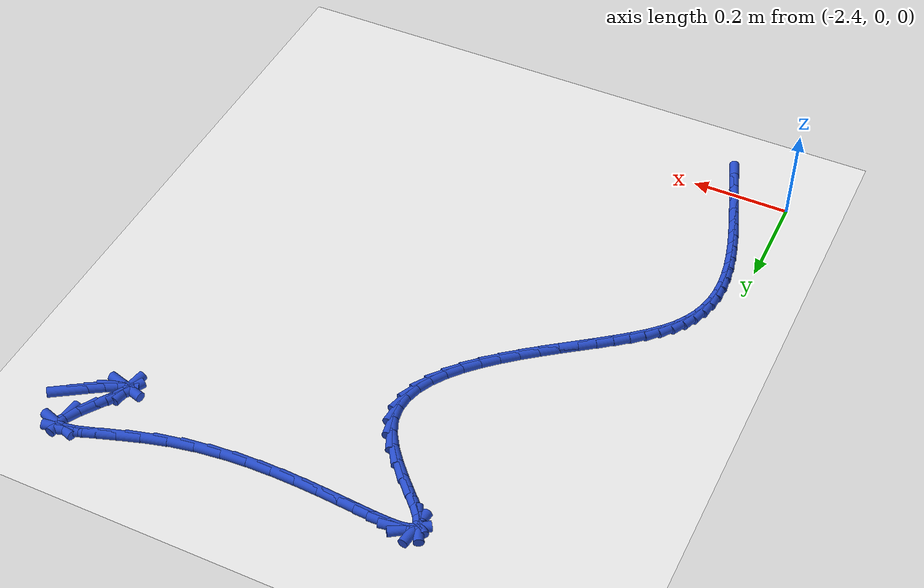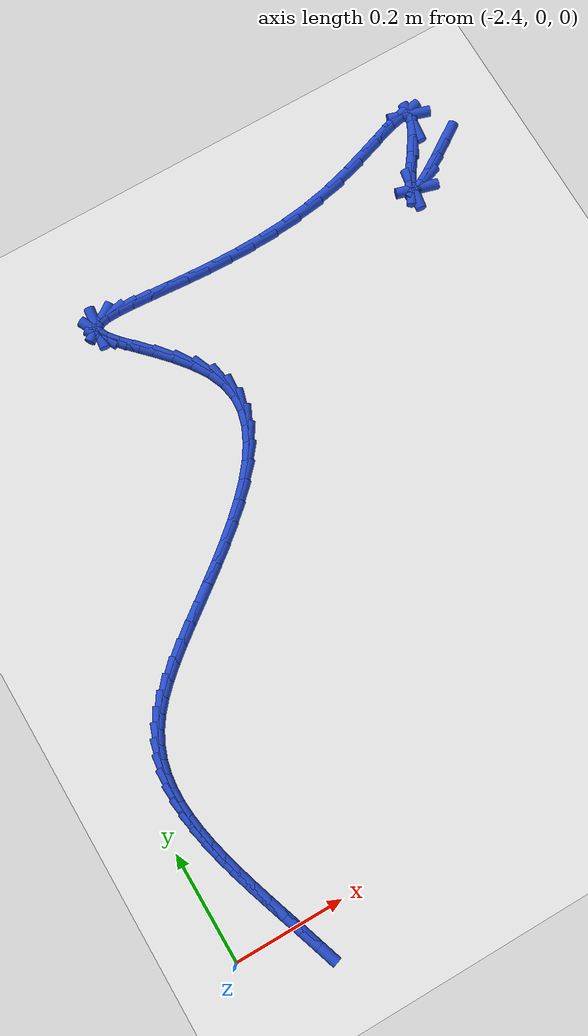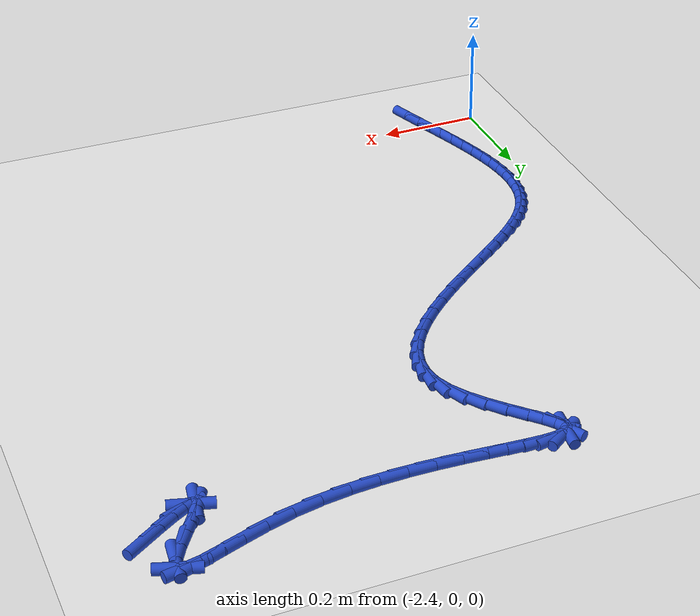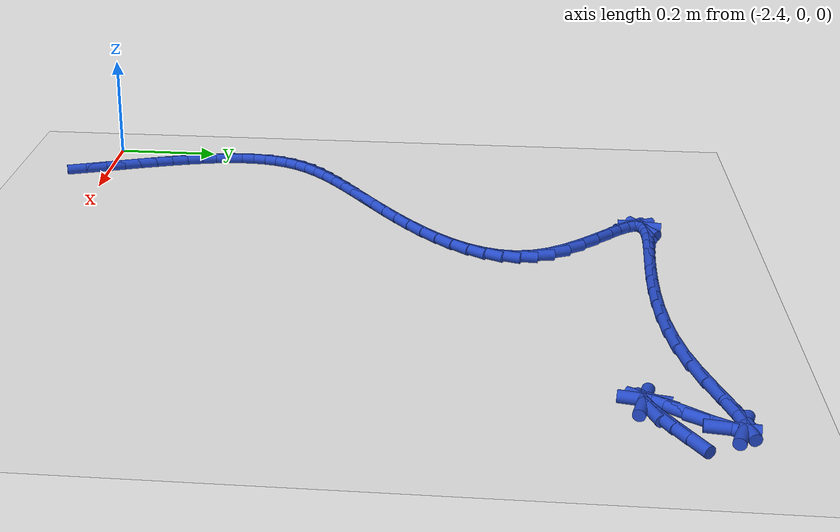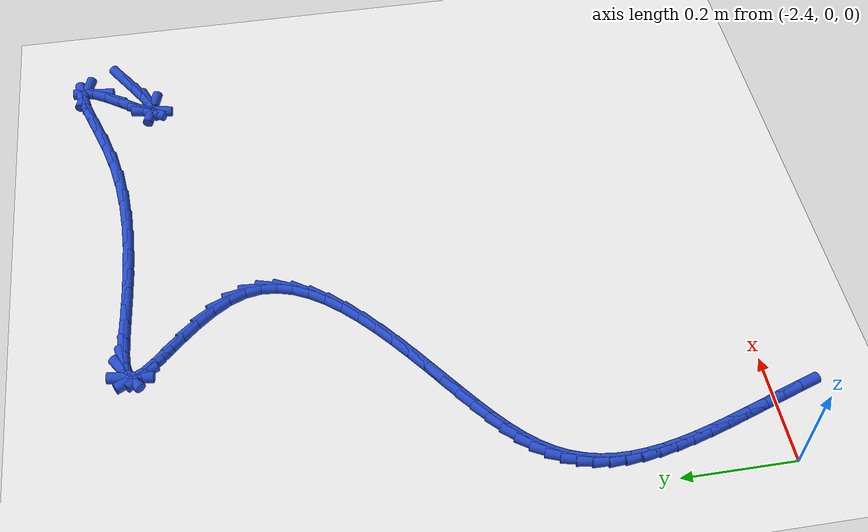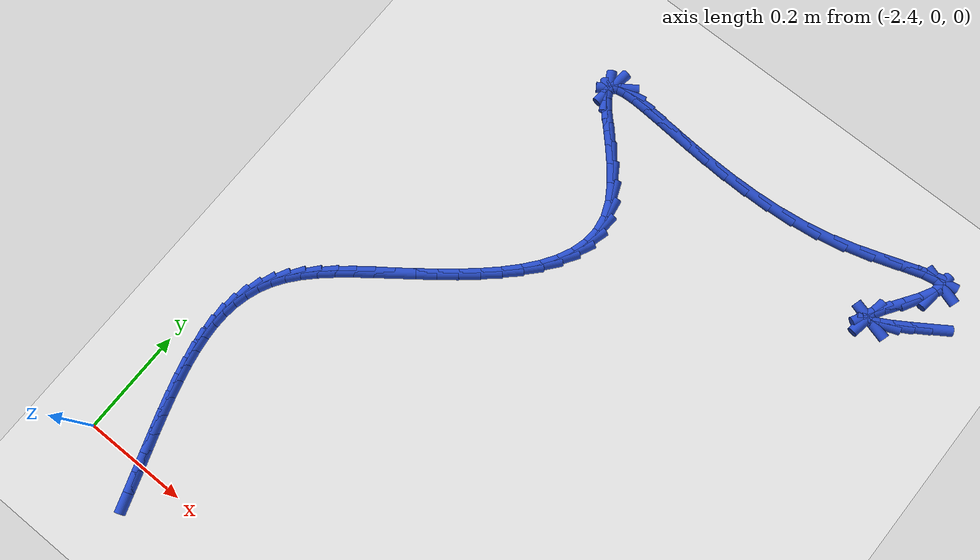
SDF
<sdf version="1.6">
 <world name="default">
  <model name="ground_plane">
   <static>1</static>
   <link name="link">
    <collision name="collision">
     <geometry><plane><normal>0 0 1</normal><size>100 100</size></plane></geometry>
     <surface><friction><ode><mu>100</mu><mu2>50</mu2></ode></friction></surface>
    </collision>
    <visual name="visual">
     <cast_shadows>0</cast_shadows>
     <geometry><plane><normal>0 0 1</normal><size>100 100</size></plane></geometry>
     <material>
      <script><uri>file://media/materials/scripts/gazebo.material</uri><name>Gazebo/WhiteGlow</name></script>
     </material>
    </visual>
   </link>
  </model>
  <model name="line">
   <link name="link_68">
    <pose>-1.349392049217175 1.0633134010072458 0.01 0 1.57 0.5846961030180268</pose>
    <collision name="collision">
     <geometry><cylinder><radius>0.01</radius><length>0.08</length></cylinder></geometry>
    </collision>
    <visual name="visual">
     <material>
      <script><name>Gazebo/Blue</name><uri>file://media/materials/scripts/gazebo.material</uri></script>
     </material>
     <geometry><cylinder><radius>0.01</radius><length>0.08</length></cylinder></geometry>
    </visual>
   </link>
   <link name="link_69">
    <pose>-1.3808588444115197 1.0424854947212565 0.01 0 1.57 0.5641062893892069</pose>
    <collision name="collision">
     <geometry><cylinder><radius>0.01</radius><length>0.08</length></cylinder></geometry>
    </collision>
    <visual name="visual">
     <material>
      <script><name>Gazebo/Blue</name><uri>file://media/materials/scripts/gazebo.material</uri></script>
     </material>
     <geometry><cylinder><radius>0.01</radius><length>0.08</length></cylinder></geometry>
    </visual>
   </link>
   <link name="link_70">
    <pose>-1.407169833526071 1.0258389354403619 0.01 0 1.57 0.5124205613549347</pose>
    <collision name="collision">
     <geometry><cylinder><radius>0.01</radius><length>0.08</length></cylinder></geometry>
    </collision>
    <visual name="visual">
     <material>
      <script><name>Gazebo/Blue</name><uri>file://media/materials/scripts/gazebo.material</uri></script>
     </material>
     <geometry><cylinder><radius>0.01</radius><length>0.08</length></cylinder></geometry>
    </visual>
   </link>
   <link name="link_71">
    <pose>-1.4275809276098108 1.0143568593406058 0.01 0 1.57 0.36966544214115243</pose>
    <collision name="collision">
     <geometry><cylinder><radius>0.01</radius><length>0.08</length></cylinder></geometry>
    </collision>
    <visual name="visual">
     <material>
      <script><name>Gazebo/Blue</name><uri>file://media/materials/scripts/gazebo.material</uri></script>
     </material>
     <geometry><cylinder><radius>0.01</radius><length>0.08</length></cylinder></geometry>
    </visual>
   </link>
   <link name="link_72">
    <pose>-1.441348037711723 1.0090224025980339 0.01 0 1.57 -0.27448623500930663</pose>
    <collision name="collision">
     <geometry><cylinder><radius>0.01</radius><length>0.08</length></cylinder></geometry>
    </collision>
    <visual name="visual">
     <material>
      <script><name>Gazebo/Blue</name><uri>file://media/materials/scripts/gazebo.material</uri></script>
     </material>
     <geometry><cylinder><radius>0.01</radius><length>0.08</length></cylinder></geometry>
    </visual>
   </link>
   <link name="link_73">
    <pose>-1.4477270748807913 1.010818701388691 0.01 0 1.57 1.3957065398257538</pose>
    <collision name="collision">
     <geometry><cylinder><radius>0.01</radius><length>0.08</length></cylinder></geometry>
    </collision>
    <visual name="visual">
     <material>
      <script><name>Gazebo/Blue</name><uri>file://media/materials/scripts/gazebo.material</uri></script>
     </material>
     <geometry><cylinder><radius>0.01</radius><length>0.08</length></cylinder></geometry>
    </visual>
   </link>
   <link name="link_74">
    <pose>-1.4459739501659992 1.0207288918886221 0.01 0 1.57 1.060895622629085</pose>
    <collision name="collision">
     <geometry><cylinder><radius>0.01</radius><length>0.08</length></cylinder></geometry>
    </collision>
    <visual name="visual">
     <material>
      <script><name>Gazebo/Blue</name><uri>file://media/materials/scripts/gazebo.material</uri></script>
     </material>
     <geometry><cylinder><radius>0.01</radius><length>0.08</length></cylinder></geometry>
    </visual>
   </link>
   <link name="link_75">
    <pose>-1.4353445746163296 1.039736110273872 0.01 0 1.57 0.9737874297250769</pose>
    <collision name="collision">
     <geometry><cylinder><radius>0.01</radius><length>0.08</length></cylinder></geometry>
    </collision>
    <visual name="visual">
     <material>
      <script><name>Gazebo/Blue</name><uri>file://media/materials/scripts/gazebo.material</uri></script>
     </material>
     <geometry><cylinder><radius>0.01</radius><length>0.08</length></cylinder></geometry>
    </visual>
   </link>
   <link name="link_76">
    <pose>-1.4164477400136493 1.0675356014170758 0.01 0 1.57 0.9764831523756357</pose>
    <collision name="collision">
     <geometry><cylinder><radius>0.01</radius><length>0.08</length></cylinder></geometry>
    </collision>
    <visual name="visual">
     <material>
      <script><name>Gazebo/Blue</name><uri>file://media/materials/scripts/gazebo.material</uri></script>
     </material>
     <geometry><cylinder><radius>0.01</radius><length>0.08</length></cylinder></geometry>
    </visual>
   </link>
   <link name="link_77">
    <pose>-1.395589776482752 1.0983987691202242 0.01 0 1.57 1.0596949639302038</pose>
    <collision name="collision">
     <geometry><cylinder><radius>0.01</radius><length>0.08</length></cylinder></geometry>
    </collision>
    <visual name="visual">
     <material>
      <script><name>Gazebo/Blue</name><uri>file://media/materials/scripts/gazebo.material</uri></script>
     </material>
     <geometry><cylinder><radius>0.01</radius><length>0.08</length></cylinder></geometry>
    </visual>
   </link>
   <link name="link_78">
    <pose>-1.3805766416713932 1.1251694284864409 0.01 0 1.57 1.4565418072173917</pose>
    <collision name="collision">
     <geometry><cylinder><radius>0.01</radius><length>0.08</length></cylinder></geometry>
    </collision>
    <visual name="visual">
     <material>
      <script><name>Gazebo/Blue</name><uri>file://media/materials/scripts/gazebo.material</uri></script>
     </material>
     <geometry><cylinder><radius>0.01</radius><length>0.08</length></cylinder></geometry>
    </visual>
   </link>
   <link name="link_79">
    <pose>-1.3787428368249641 1.1411497008272657 0.01 0 1.57 -0.309898226240471</pose>
    <collision name="collision">
     <geometry><cylinder><radius>0.01</radius><length>0.08</length></cylinder></geometry>
    </collision>
    <visual name="visual">
     <material>
      <script><name>Gazebo/Blue</name><uri>file://media/materials/scripts/gazebo.material</uri></script>
     </material>
     <geometry><cylinder><radius>0.01</radius><length>0.08</length></cylinder></geometry>
    </visual>
   </link>
   <link name="link_80">
    <pose>-1.3916273866377389 1.1452755307078553 0.01 0 1.57 0.19578130825143006</pose>
    <collision name="collision">
     <geometry><cylinder><radius>0.01</radius><length>0.08</length></cylinder></geometry>
    </collision>
    <visual name="visual">
     <material>
      <script><name>Gazebo/Blue</name><uri>file://media/materials/scripts/gazebo.material</uri></script>
     </material>
     <geometry><cylinder><radius>0.01</radius><length>0.08</length></cylinder></geometry>
    </visual>
   </link>
   <link name="link_81">
    <pose>-1.4168752244383929 1.1402683361214299 0.01 0 1.57 0.31201529950717044</pose>
    <collision name="collision">
     <geometry><cylinder><radius>0.01</radius><length>0.08</length></cylinder></geometry>
    </collision>
    <visual name="visual">
     <material>
      <script><name>Gazebo/Blue</name><uri>file://media/materials/scripts/gazebo.material</uri></script>
     </material>
     <geometry><cylinder><radius>0.01</radius><length>0.08</length></cylinder></geometry>
    </visual>
   </link>
   <link name="link_82">
    <pose>-1.4520590452879973 1.128919758385942 0.01 0 1.57 0.33575522227409255</pose>
    <collision name="collision">
     <geometry><cylinder><radius>0.01</radius><length>0.08</length></cylinder></geometry>
    </collision>
    <visual name="visual">
     <material>
      <script><name>Gazebo/Blue</name><uri>file://media/materials/scripts/gazebo.material</uri></script>
     </material>
     <geometry><cylinder><radius>0.01</radius><length>0.08</length></cylinder></geometry>
    </visual>
   </link>
   <link name="link_83">
    <pose>-1.494751544247624 1.1140214388193455 0.01 0 1.57 0.31668944633849033</pose>
    <collision name="collision">
     <geometry><cylinder><radius>0.01</radius><length>0.08</length></cylinder></geometry>
    </collision>
    <visual name="visual">
     <material>
      <script><name>Gazebo/Blue</name><uri>file://media/materials/scripts/gazebo.material</uri></script>
     </material>
     <geometry><cylinder><radius>0.01</radius><length>0.08</length></cylinder></geometry>
    </visual>
   </link>
   <link name="link_84">
    <pose>-1.5425254163783444 1.0983650187395932 0.01 0 1.57 0.26391288006326485</pose>
    <collision name="collision">
     <geometry><cylinder><radius>0.01</radius><length>0.08</length></cylinder></geometry>
    </collision>
    <visual name="visual">
     <material>
      <script><name>Gazebo/Blue</name><uri>file://media/materials/scripts/gazebo.material</uri></script>
     </material>
     <geometry><cylinder><radius>0.01</radius><length>0.08</length></cylinder></geometry>
    </visual>
   </link>
   <link name="link_85">
    <pose>-1.5929555509627307 1.0847380039390737 0.01 0 1.57 0.18839973131292334</pose>
    <collision name="collision">
     <geometry><cylinder><radius>0.01</radius><length>0.08</length></cylinder></geometry>
    </collision>
    <visual name="visual">
     <material>
      <script><name>Gazebo/Blue</name><uri>file://media/materials/scripts/gazebo.material</uri></script>
     </material>
     <geometry><cylinder><radius>0.01</radius><length>0.08</length></cylinder></geometry>
    </visual>
   </link>
   <link name="link_86">
    <pose>-1.6441180091431447 1.0749833241786566 0.01 0 1.57 0.1203615236274353</pose>
    <collision name="collision">
     <geometry><cylinder><radius>0.01</radius><length>0.08</length></cylinder></geometry>
    </collision>
    <visual name="visual">
     <material>
      <script><name>Gazebo/Blue</name><uri>file://media/materials/scripts/gazebo.material</uri></script>
     </material>
     <geometry><cylinder><radius>0.01</radius><length>0.08</length></cylinder></geometry>
    </visual>
   </link>
   <link name="link_87">
    <pose>-1.6952252497103972 1.0688021010549384 0.01 0 1.57 0.06341687578810595</pose>
    <collision name="collision">
     <geometry><cylinder><radius>0.01</radius><length>0.08</length></cylinder></geometry>
    </collision>
    <visual name="visual">
     <material>
      <script><name>Gazebo/Blue</name><uri>file://media/materials/scripts/gazebo.material</uri></script>
     </material>
     <geometry><cylinder><radius>0.01</radius><length>0.08</length></cylinder></geometry>
    </visual>
   </link>
   <link name="link_88">
    <pose>-1.7456463570175456 1.065600258520966 0.01 0 1.57 0.016627194751597265</pose>
    <collision name="collision">
     <geometry><cylinder><radius>0.01</radius><length>0.08</length></cylinder></geometry>
    </collision>
    <visual name="visual">
     <material>
      <script><name>Gazebo/Blue</name><uri>file://media/materials/scripts/gazebo.material</uri></script>
     </material>
     <geometry><cylinder><radius>0.01</radius><length>0.08</length></cylinder></geometry>
    </visual>
   </link>
   <link name="link_89">
    <pose>-1.7947504154176481 1.0647837205297879 0.01 0 1.57 -0.020666506835584502</pose>
    <collision name="collision">
     <geometry><cylinder><radius>0.01</radius><length>0.08</length></cylinder></geometry>
    </collision>
    <visual name="visual">
     <material>
      <script><name>Gazebo/Blue</name><uri>file://media/materials/scripts/gazebo.material</uri></script>
     </material>
     <geometry><cylinder><radius>0.01</radius><length>0.08</length></cylinder></geometry>
    </visual>
   </link>
   <link name="link_90">
    <pose>-1.8419065092637623 1.0657584110344511 0.01 0 1.57 -0.048682426837604285</pose>
    <collision name="collision">
     <geometry><cylinder><radius>0.01</radius><length>0.08</length></cylinder></geometry>
    </collision>
    <visual name="visual">
     <material>
      <script><name>Gazebo/Blue</name><uri>file://media/materials/scripts/gazebo.material</uri></script>
     </material>
     <geometry><cylinder><radius>0.01</radius><length>0.08</length></cylinder></geometry>
    </visual>
   </link>
   <link name="link_91">
    <pose>-1.886483722908946 1.0679302539880036 0.01 0 1.57 -0.06697948770084197</pose>
    <collision name="collision">
     <geometry><cylinder><radius>0.01</radius><length>0.08</length></cylinder></geometry>
    </collision>
    <visual name="visual">
     <material>
      <script><name>Gazebo/Blue</name><uri>file://media/materials/scripts/gazebo.material</uri></script>
     </material>
     <geometry><cylinder><radius>0.01</radius><length>0.08</length></cylinder></geometry>
    </visual>
   </link>
   <link name="link_92">
    <pose>-1.9278511407062564 1.0707051733434925 0.01 0 1.57 -0.0740493839488016</pose>
    <collision name="collision">
     <geometry><cylinder><radius>0.01</radius><length>0.08</length></cylinder></geometry>
    </collision>
    <visual name="visual">
     <material>
      <script><name>Gazebo/Blue</name><uri>file://media/materials/scripts/gazebo.material</uri></script>
     </material>
     <geometry><cylinder><radius>0.01</radius><length>0.08</length></cylinder></geometry>
    </visual>
   </link>
   <link name="link_93">
    <pose>-1.9653778470087522 1.0734890930539662 0.01 0 1.57 -0.06642275164176134</pose>
    <collision name="collision">
     <geometry><cylinder><radius>0.01</radius><length>0.08</length></cylinder></geometry>
    </collision>
    <visual name="visual">
     <material>
      <script><name>Gazebo/Blue</name><uri>file://media/materials/scripts/gazebo.material</uri></script>
     </material>
     <geometry><cylinder><radius>0.01</radius><length>0.08</length></cylinder></geometry>
    </visual>
   </link>
   <link name="link_94">
    <pose>-1.998432926169491 1.0756879370724723 0.01 0 1.57 -0.03646325002539953</pose>
    <collision name="collision">
     <geometry><cylinder><radius>0.01</radius><length>0.08</length></cylinder></geometry>
    </collision>
    <visual name="visual">
     <material>
      <script><name>Gazebo/Blue</name><uri>file://media/materials/scripts/gazebo.material</uri></script>
     </material>
     <geometry><cylinder><radius>0.01</radius><length>0.08</length></cylinder></geometry>
    </visual>
   </link>
   <link name="link_95">
    <pose>-2.026385462541532 1.0767076293520585 0.01 0 1.57 0.03390090327300626</pose>
    <collision name="collision">
     <geometry><cylinder><radius>0.01</radius><length>0.08</length></cylinder></geometry>
    </collision>
    <visual name="visual">
     <material>
      <script><name>Gazebo/Blue</name><uri>file://media/materials/scripts/gazebo.material</uri></script>
     </material>
     <geometry><cylinder><radius>0.01</radius><length>0.08</length></cylinder></geometry>
    </visual>
   </link>
   <link name="link_96">
    <pose>-2.048604540477931 1.0759540938457721 0.01 0 1.57 0.1943552256495177</pose>
    <collision name="collision">
     <geometry><cylinder><radius>0.01</radius><length>0.08</length></cylinder></geometry>
    </collision>
    <visual name="visual">
     <material>
      <script><name>Gazebo/Blue</name><uri>file://media/materials/scripts/gazebo.material</uri></script>
     </material>
     <geometry><cylinder><radius>0.01</radius><length>0.08</length></cylinder></geometry>
    </visual>
   </link>
   <link name="link_97">
    <pose>-2.0644592443317458 1.072833254506661 0.01 0 1.57 0.601625738121306</pose>
    <collision name="collision">
     <geometry><cylinder><radius>0.01</radius><length>0.08</length></cylinder></geometry>
    </collision>
    <visual name="visual">
     <material>
      <script><name>Gazebo/Blue</name><uri>file://media/materials/scripts/gazebo.material</uri></script>
     </material>
     <geometry><cylinder><radius>0.01</radius><length>0.08</length></cylinder></geometry>
    </visual>
   </link>
   <link name="link_98">
    <pose>-2.0733186584560355 1.0667510352877727 0.01 0 1.57 1.4435308155119944</pose>
    <collision name="collision">
     <geometry><cylinder><radius>0.01</radius><length>0.08</length></cylinder></geometry>
    </collision>
    <visual name="visual">
     <material>
      <script><name>Gazebo/Blue</name><uri>file://media/materials/scripts/gazebo.material</uri></script>
     </material>
     <geometry><cylinder><radius>0.01</radius><length>0.08</length></cylinder></geometry>
    </visual>
   </link>
   <link name="link_99">
    <pose>-2.0745518672038576 1.0571133601421554 0.01 0 1.57 -1.099742794856871</pose>
    <collision name="collision">
     <geometry><cylinder><radius>0.01</radius><length>0.08</length></cylinder></geometry>
    </collision>
    <visual name="visual">
     <material>
      <script><name>Gazebo/Blue</name><uri>file://media/materials/scripts/gazebo.material</uri></script>
     </material>
     <geometry><cylinder><radius>0.01</radius><length>0.08</length></cylinder></geometry>
    </visual>
   </link>
   <link name="link_100">
    <pose>-2.0675307573712 1.043327339374024 0.01 0 1.57 -0.8786188223495467</pose>
    <collision name="collision">
     <geometry><cylinder><radius>0.01</radius><length>0.08</length></cylinder></geometry>
    </collision>
    <visual name="visual">
     <material>
      <script><name>Gazebo/Blue</name><uri>file://media/materials/scripts/gazebo.material</uri></script>
     </material>
     <geometry><cylinder><radius>0.01</radius><length>0.08</length></cylinder></geometry>
    </visual>
   </link>
   <link name="link_101">
    <pose>-2.0524659392258813 1.025155138000584 0.01 0 1.57 -0.8100609833291657</pose>
    <collision name="collision">
     <geometry><cylinder><radius>0.01</radius><length>0.08</length></cylinder></geometry>
    </collision>
    <visual name="visual">
     <material>
      <script><name>Gazebo/Blue</name><uri>file://media/materials/scripts/gazebo.material</uri></script>
     </material>
     <geometry><cylinder><radius>0.01</radius><length>0.08</length></cylinder></geometry>
    </visual>
   </link>
   <link name="link_102">
    <pose>-2.03157669961105 1.0032092490778939 0.01 0 1.57 -0.8013070545493701</pose>
    <collision name="collision">
     <geometry><cylinder><radius>0.01</radius><length>0.08</length></cylinder></geometry>
    </collision>
    <visual name="visual">
     <material>
      <script><name>Gazebo/Blue</name><uri>file://media/materials/scripts/gazebo.material</uri></script>
     </material>
     <geometry><cylinder><radius>0.01</radius><length>0.08</length></cylinder></geometry>
    </visual>
   </link>
   <link name="link_103">
    <pose>-2.007376762720257 0.9782268090903321 0.01 0 1.57 -0.8290772997848959</pose>
    <collision name="collision">
     <geometry><cylinder><radius>0.01</radius><length>0.08</length></cylinder></geometry>
    </collision>
    <visual name="visual">
     <material>
      <script><name>Gazebo/Blue</name><uri>file://media/materials/scripts/gazebo.material</uri></script>
     </material>
     <geometry><cylinder><radius>0.01</radius><length>0.08</length></cylinder></geometry>
    </visual>
   </link>
   <link name="link_104">
    <pose>-1.9823798527470535 0.9509449545222765 0.01 0 1.57 -0.8917398385609193</pose>
    <collision name="collision">
     <geometry><cylinder><radius>0.01</radius><length>0.08</length></cylinder></geometry>
    </collision>
    <visual name="visual">
     <material>
      <script><name>Gazebo/Blue</name><uri>file://media/materials/scripts/gazebo.material</uri></script>
     </material>
     <geometry><cylinder><radius>0.01</radius><length>0.08</length></cylinder></geometry>
    </visual>
   </link>
   <link name="link_105">
    <pose>-1.959099693884991 0.922100821858105 0.01 0 1.57 -1.0000176219292862</pose>
    <collision name="collision">
     <geometry><cylinder><radius>0.01</radius><length>0.08</length></cylinder></geometry>
    </collision>
    <visual name="visual">
     <material>
      <script><name>Gazebo/Blue</name><uri>file://media/materials/scripts/gazebo.material</uri></script>
     </material>
     <geometry><cylinder><radius>0.01</radius><length>0.08</length></cylinder></geometry>
    </visual>
   </link>
   <link name="link_106">
    <pose>-1.9400500103276204 0.8924315475821958 0.01 0 1.57 -1.17677501678089</pose>
    <collision name="collision">
     <geometry><cylinder><radius>0.01</radius><length>0.08</length></cylinder></geometry>
    </collision>
    <visual name="visual">
     <material>
      <script><name>Gazebo/Blue</name><uri>file://media/materials/scripts/gazebo.material</uri></script>
     </material>
     <geometry><cylinder><radius>0.01</radius><length>0.08</length></cylinder></geometry>
    </visual>
   </link>
   <link name="link_107">
    <pose>-1.92767157446764 0.8626587659640879 0.01 0 1.57 -1.407934614927856</pose>
    <collision name="collision">
     <geometry><cylinder><radius>0.01</radius><length>0.08</length></cylinder></geometry>
    </collision>
    <visual name="visual">
     <material>
      <script><name>Gazebo/Blue</name><uri>file://media/materials/scripts/gazebo.material</uri></script>
     </material>
     <geometry><cylinder><radius>0.01</radius><length>0.08</length></cylinder></geometry>
    </visual>
   </link>
   <link name="link_108">
    <pose>-1.9228258209777258 0.8331685029352958 0.01 0 1.57 1.5015356527213792</pose>
    <collision name="collision">
     <geometry><cylinder><radius>0.01</radius><length>0.08</length></cylinder></geometry>
    </collision>
    <visual name="visual">
     <material>
      <script><name>Gazebo/Blue</name><uri>file://media/materials/scripts/gazebo.material</uri></script>
     </material>
     <geometry><cylinder><radius>0.01</radius><length>0.08</length></cylinder></geometry>
    </visual>
   </link>
   <link name="link_109">
    <pose>-1.9248477328198386 0.8040224143352297 0.01 0 1.57 1.294204847401321</pose>
    <collision name="collision">
     <geometry><cylinder><radius>0.01</radius><length>0.08</length></cylinder></geometry>
    </collision>
    <visual name="visual">
     <material>
      <script><name>Gazebo/Blue</name><uri>file://media/materials/scripts/gazebo.material</uri></script>
     </material>
     <geometry><cylinder><radius>0.01</radius><length>0.08</length></cylinder></geometry>
    </visual>
   </link>
   <link name="link_110">
    <pose>-1.9330099222035788 0.7752689022550523 0.01 0 1.57 1.1237052216335828</pose>
    <collision name="collision">
     <geometry><cylinder><radius>0.01</radius><length>0.08</length></cylinder></geometry>
    </collision>
    <visual name="visual">
     <material>
      <script><name>Gazebo/Blue</name><uri>file://media/materials/scripts/gazebo.material</uri></script>
     </material>
     <geometry><cylinder><radius>0.01</radius><length>0.08</length></cylinder></geometry>
    </visual>
   </link>
   <link name="link_111">
    <pose>-1.9465850013385484 0.7469563687859263 0.01 0 1.57 0.9899988471305305</pose>
    <collision name="collision">
     <geometry><cylinder><radius>0.01</radius><length>0.08</length></cylinder></geometry>
    </collision>
    <visual name="visual">
     <material>
      <script><name>Gazebo/Blue</name><uri>file://media/materials/scripts/gazebo.material</uri></script>
     </material>
     <geometry><cylinder><radius>0.01</radius><length>0.08</length></cylinder></geometry>
    </visual>
   </link>
   <link name="link_112">
    <pose>-1.9648455824343476 0.7191332160190135 0.01 0 1.57 0.8873916763246258</pose>
    <collision name="collision">
     <geometry><cylinder><radius>0.01</radius><length>0.08</length></cylinder></geometry>
    </collision>
    <visual name="visual">
     <material>
      <script><name>Gazebo/Blue</name><uri>file://media/materials/scripts/gazebo.material</uri></script>
     </material>
     <geometry><cylinder><radius>0.01</radius><length>0.08</length></cylinder></geometry>
    </visual>
   </link>
   <link name="link_113">
    <pose>-1.9870642777005776 0.6918478460454763 0.01 0 1.57 0.809359000315264</pose>
    <collision name="collision">
     <geometry><cylinder><radius>0.01</radius><length>0.08</length></cylinder></geometry>
    </collision>
    <visual name="visual">
     <material>
      <script><name>Gazebo/Blue</name><uri>file://media/materials/scripts/gazebo.material</uri></script>
     </material>
     <geometry><cylinder><radius>0.01</radius><length>0.08</length></cylinder></geometry>
    </visual>
   </link>
   <link name="link_114">
    <pose>-2.01251369934684 0.6651486609564775 0.01 0 1.57 0.7504576602475288</pose>
    <collision name="collision">
     <geometry><cylinder><radius>0.01</radius><length>0.08</length></cylinder></geometry>
    </collision>
    <visual name="visual">
     <material>
      <script><name>Gazebo/Blue</name><uri>file://media/materials/scripts/gazebo.material</uri></script>
     </material>
     <geometry><cylinder><radius>0.01</radius><length>0.08</length></cylinder></geometry>
    </visual>
   </link>
   <link name="link_115">
    <pose>-2.0404664595827358 0.6390840628431792 0.01 0 1.57 0.7066811549677525</pose>
    <collision name="collision">
     <geometry><cylinder><radius>0.01</radius><length>0.08</length></cylinder></geometry>
    </collision>
    <visual name="visual">
     <material>
      <script><name>Gazebo/Blue</name><uri>file://media/materials/scripts/gazebo.material</uri></script>
     </material>
     <geometry><cylinder><radius>0.01</radius><length>0.08</length></cylinder></geometry>
    </visual>
   </link>
   <link name="link_116">
    <pose>-2.0701951706178656 0.6137024537967435 0.01 0 1.57 0.675303320148984</pose>
    <collision name="collision">
     <geometry><cylinder><radius>0.01</radius><length>0.08</length></cylinder></geometry>
    </collision>
    <visual name="visual">
     <material>
      <script><name>Gazebo/Blue</name><uri>file://media/materials/scripts/gazebo.material</uri></script>
     </material>
     <geometry><cylinder><radius>0.01</radius><length>0.08</length></cylinder></geometry>
    </visual>
   </link>
   <link name="link_117">
    <pose>-2.1009724446618296 0.5890522359083331 0.01 0 1.57 0.6546552084668923</pose>
    <collision name="collision">
     <geometry><cylinder><radius>0.01</radius><length>0.08</length></cylinder></geometry>
    </collision>
    <visual name="visual">
     <material>
      <script><name>Gazebo/Blue</name><uri>file://media/materials/scripts/gazebo.material</uri></script>
     </material>
     <geometry><cylinder><radius>0.01</radius><length>0.08</length></cylinder></geometry>
    </visual>
   </link>
   <link name="link_118">
    <pose>-2.1320708939242303 0.5651818112691098 0.01 0 1.57 0.6439816490130669</pose>
    <collision name="collision">
     <geometry><cylinder><radius>0.01</radius><length>0.08</length></cylinder></geometry>
    </collision>
    <visual name="visual">
     <material>
      <script><name>Gazebo/Blue</name><uri>file://media/materials/scripts/gazebo.material</uri></script>
     </material>
     <geometry><cylinder><radius>0.01</radius><length>0.08</length></cylinder></geometry>
    </visual>
   </link>
   <link name="link_119">
    <pose>-2.1627631477963987 0.5421395674571085 0.01 0 1.57 0.6435724965330891</pose>
    <collision name="collision">
     <geometry><cylinder><radius>0.01</radius><length>0.08</length></cylinder></geometry>
    </collision>
    <visual name="visual">
     <material>
      <script><name>Gazebo/Blue</name><uri>file://media/materials/scripts/gazebo.material</uri></script>
     </material>
     <geometry><cylinder><radius>0.01</radius><length>0.08</length></cylinder></geometry>
    </visual>
   </link>
   <link name="link_120">
    <pose>-2.1923920228262914 0.5199146061039432 0.01 0 1.57 0.6549807889492907</pose>
    <collision name="collision">
     <geometry><cylinder><radius>0.01</radius><length>0.08</length></cylinder></geometry>
    </collision>
    <visual name="visual">
     <material>
      <script><name>Gazebo/Blue</name><uri>file://media/materials/scripts/gazebo.material</uri></script>
     </material>
     <geometry><cylinder><radius>0.01</radius><length>0.08</length></cylinder></geometry>
    </visual>
   </link>
   <link name="link_121">
    <pose>-2.220530371492626 0.4983017212424835 0.01 0 1.57 0.6800934999810674</pose>
    <collision name="collision">
     <geometry><cylinder><radius>0.01</radius><length>0.08</length></cylinder></geometry>
    </collision>
    <visual name="visual">
     <material>
      <script><name>Gazebo/Blue</name><uri>file://media/materials/scripts/gazebo.material</uri></script>
     </material>
     <geometry><cylinder><radius>0.01</radius><length>0.08</length></cylinder></geometry>
    </visual>
   </link>
   <link name="link_122">
    <pose>-2.246798100704229 0.47705596079596785 0.01 0 1.57 0.7213875970143563</pose>
    <collision name="collision">
     <geometry><cylinder><radius>0.01</radius><length>0.08</length></cylinder></geometry>
    </collision>
    <visual name="visual">
     <material>
      <script><name>Gazebo/Blue</name><uri>file://media/materials/scripts/gazebo.material</uri></script>
     </material>
     <geometry><cylinder><radius>0.01</radius><length>0.08</length></cylinder></geometry>
    </visual>
   </link>
   <link name="link_123">
    <pose>-2.270815117369921 0.4559323726876346 0.01 0 1.57 0.7821179799361742</pose>
    <collision name="collision">
     <geometry><cylinder><radius>0.01</radius><length>0.08</length></cylinder></geometry>
    </collision>
    <visual name="visual">
     <material>
      <script><name>Gazebo/Blue</name><uri>file://media/materials/scripts/gazebo.material</uri></script>
     </material>
     <geometry><cylinder><radius>0.01</radius><length>0.08</length></cylinder></geometry>
    </visual>
   </link>
   <link name="link_124">
    <pose>-2.292201328398525 0.43468600484072223 0.01 0 1.57 0.8662128908360034</pose>
    <collision name="collision">
     <geometry><cylinder><radius>0.01</radius><length>0.08</length></cylinder></geometry>
    </collision>
    <visual name="visual">
     <material>
      <script><name>Gazebo/Blue</name><uri>file://media/materials/scripts/gazebo.material</uri></script>
     </material>
     <geometry><cylinder><radius>0.01</radius><length>0.08</length></cylinder></geometry>
    </visual>
   </link>
   <link name="link_125">
    <pose>-2.3105766406988653 0.41307190517846815 0.01 0 1.57 0.9761990509642695</pose>
    <collision name="collision">
     <geometry><cylinder><radius>0.01</radius><length>0.08</length></cylinder></geometry>
    </collision>
    <visual name="visual">
     <material>
      <script><name>Gazebo/Blue</name><uri>file://media/materials/scripts/gazebo.material</uri></script>
     </material>
     <geometry><cylinder><radius>0.01</radius><length>0.08</length></cylinder></geometry>
    </visual>
   </link>
   <link name="link_126">
    <pose>-2.3255981007066926 0.39085851642293756 0.01 0 1.57 1.0993513993720319</pose>
    <collision name="collision">
     <geometry><cylinder><radius>0.01</radius><length>0.08</length></cylinder></geometry>
    </collision>
    <visual name="visual">
     <material>
      <script><name>Gazebo/Blue</name><uri>file://media/materials/scripts/gazebo.material</uri></script>
     </material>
     <geometry><cylinder><radius>0.01</radius><length>0.08</length></cylinder></geometry>
    </visual>
   </link>
   <link name="link_127">
    <pose>-2.3372800193891554 0.3679431328708264 0.01 0 1.57 1.223639712189645</pose>
    <collision name="collision">
     <geometry><cylinder><radius>0.01</radius><length>0.08</length></cylinder></geometry>
    </collision>
    <visual name="visual">
     <material>
      <script><name>Gazebo/Blue</name><uri>file://media/materials/scripts/gazebo.material</uri></script>
     </material>
     <geometry><cylinder><radius>0.01</radius><length>0.08</length></cylinder></geometry>
    </visual>
   </link>
   <link name="link_128">
    <pose>-2.345836147769539 0.34429497917580626 0.01 0 1.57 1.3434930070023974</pose>
    <collision name="collision">
     <geometry><cylinder><radius>0.01</radius><length>0.08</length></cylinder></geometry>
    </collision>
    <visual name="visual">
     <material>
      <script><name>Gazebo/Blue</name><uri>file://media/materials/scripts/gazebo.material</uri></script>
     </material>
     <geometry><cylinder><radius>0.01</radius><length>0.08</length></cylinder></geometry>
    </visual>
   </link>
   <link name="link_129">
    <pose>-2.3514824080429038 0.3198840630496948 0.01 0 1.57 1.454189456246961</pose>
    <collision name="collision">
     <geometry><cylinder><radius>0.01</radius><length>0.08</length></cylinder></geometry>
    </collision>
    <visual name="visual">
     <material>
      <script><name>Gazebo/Blue</name><uri>file://media/materials/scripts/gazebo.material</uri></script>
     </material>
     <geometry><cylinder><radius>0.01</radius><length>0.08</length></cylinder></geometry>
    </visual>
   </link>
   <link name="link_130">
    <pose>-2.3544347224043083 0.29468039220431025 0.01 0 1.57 1.552574912126799</pose>
    <collision name="collision">
     <geometry><cylinder><radius>0.01</radius><length>0.08</length></cylinder></geometry>
    </collision>
    <visual name="visual">
     <material>
      <script><name>Gazebo/Blue</name><uri>file://media/materials/scripts/gazebo.material</uri></script>
     </material>
     <geometry><cylinder><radius>0.01</radius><length>0.08</length></cylinder></geometry>
    </visual>
   </link>
   <link name="link_131">
    <pose>-2.354909013048811 0.26865397435147026 0.01 0 1.57 -1.5043812439800641</pose>
    <collision name="collision">
     <geometry><cylinder><radius>0.01</radius><length>0.08</length></cylinder></geometry>
    </collision>
    <visual name="visual">
     <material>
      <script><name>Gazebo/Blue</name><uri>file://media/materials/scripts/gazebo.material</uri></script>
     </material>
     <geometry><cylinder><radius>0.01</radius><length>0.08</length></cylinder></geometry>
    </visual>
   </link>
   <link name="link_132">
    <pose>-2.3531212021714722 0.2417748172029928 0.01 0 1.57 -1.433561751932049</pose>
    <collision name="collision">
     <geometry><cylinder><radius>0.01</radius><length>0.08</length></cylinder></geometry>
    </collision>
    <visual name="visual">
     <material>
      <script><name>Gazebo/Blue</name><uri>file://media/materials/scripts/gazebo.material</uri></script>
     </material>
     <geometry><cylinder><radius>0.01</radius><length>0.08</length></cylinder></geometry>
    </visual>
   </link>
   <link name="link_133">
    <pose>-2.3492872119673507 0.21401292847069642 0.01 0 1.57 -1.3757718192809194</pose>
    <collision name="collision">
     <geometry><cylinder><radius>0.01</radius><length>0.08</length></cylinder></geometry>
    </collision>
    <visual name="visual">
     <material>
      <script><name>Gazebo/Blue</name><uri>file://media/materials/scripts/gazebo.material</uri></script>
     </material>
     <geometry><cylinder><radius>0.01</radius><length>0.08</length></cylinder></geometry>
    </visual>
   </link>
   <link name="link_134">
    <pose>-2.3436229646315057 0.18533831586639804 0.01 0 1.57 -1.3298177066301662</pose>
    <collision name="collision">
     <geometry><cylinder><radius>0.01</radius><length>0.08</length></cylinder></geometry>
    </collision>
    <visual name="visual">
     <material>
      <script><name>Gazebo/Blue</name><uri>file://media/materials/scripts/gazebo.material</uri></script>
     </material>
     <geometry><cylinder><radius>0.01</radius><length>0.08</length></cylinder></geometry>
    </visual>
   </link>
   <link name="link_135">
    <pose>-2.3363443823589964 0.15572098710191604 0.01 0 1.57 -1.2944022349805822</pose>
    <collision name="collision">
     <geometry><cylinder><radius>0.01</radius><length>0.08</length></cylinder></geometry>
    </collision>
    <visual name="visual">
     <material>
      <script><name>Gazebo/Blue</name><uri>file://media/materials/scripts/gazebo.material</uri></script>
     </material>
     <geometry><cylinder><radius>0.01</radius><length>0.08</length></cylinder></geometry>
    </visual>
   </link>
   <link name="link_136">
    <pose>-2.3276673873448814 0.12513094988906828 0.01 0 1.57 -1.2682934482075279</pose>
    <collision name="collision">
     <geometry><cylinder><radius>0.01</radius><length>0.08</length></cylinder></geometry>
    </collision>
    <visual name="visual">
     <material>
      <script><name>Gazebo/Blue</name><uri>file://media/materials/scripts/gazebo.material</uri></script>
     </material>
     <geometry><cylinder><radius>0.01</radius><length>0.08</length></cylinder></geometry>
    </visual>
   </link>
   <link name="link_137">
    <pose>-2.317807901784222 0.09353821193967278 0.01 0 1.57 -1.250400565113112</pose>
    <collision name="collision">
     <geometry><cylinder><radius>0.01</radius><length>0.08</length></cylinder></geometry>
    </collision>
    <visual name="visual">
     <material>
      <script><name>Gazebo/Blue</name><uri>file://media/materials/scripts/gazebo.material</uri></script>
     </material>
     <geometry><cylinder><radius>0.01</radius><length>0.08</length></cylinder></geometry>
    </visual>
   </link>
   <link name="link_138">
    <pose>-2.3069818478720743 0.06091278096554742 0.01 0 1.57 -1.2397955549262802</pose>
    <collision name="collision">
     <geometry><cylinder><radius>0.01</radius><length>0.08</length></cylinder></geometry>
    </collision>
    <visual name="visual">
     <material>
      <script><name>Gazebo/Blue</name><uri>file://media/materials/scripts/gazebo.material</uri></script>
     </material>
     <geometry><cylinder><radius>0.01</radius><length>0.08</length></cylinder></geometry>
    </visual>
   </link>
   <link name="link_139">
    <pose>-2.2954051478034994 0.027224664678510174 0.01 0 1.57 -1.2357066972682604</pose>
    <collision name="collision">
     <geometry><cylinder><radius>0.01</radius><length>0.08</length></cylinder></geometry>
    </collision>
    <visual name="visual">
     <material>
      <script><name>Gazebo/Blue</name><uri>file://media/materials/scripts/gazebo.material</uri></script>
     </material>
     <geometry><cylinder><radius>0.01</radius><length>0.08</length></cylinder></geometry>
    </visual>
   </link>
   <link name="link_140">
    <pose>-2.2832937237735575 -0.007556129209620552 0.01 0 1.57 -1.2374997024678227</pose>
    <collision name="collision">
     <geometry><cylinder><radius>0.01</radius><length>0.08</length></cylinder></geometry>
    </collision>
    <visual name="visual">
     <material>
      <script><name>Gazebo/Blue</name><uri>file://media/materials/scripts/gazebo.material</uri></script>
     </material>
     <geometry><cylinder><radius>0.01</radius><length>0.08</length></cylinder></geometry>
    </visual>
   </link>
   <link name="link_141">
    <pose>-2.270863497977306 -0.04345959298702784 0.01 0 1.57 -1.244654663721071</pose>
    <collision name="collision">
     <geometry><cylinder><radius>0.01</radius><length>0.08</length></cylinder></geometry>
    </collision>
    <visual name="visual">
     <material>
      <script><name>Gazebo/Blue</name><uri>file://media/materials/scripts/gazebo.material</uri></script>
     </material>
     <geometry><cylinder><radius>0.01</radius><length>0.08</length></cylinder></geometry>
    </visual>
   </link>
  </model>
 </world>
</sdf>
